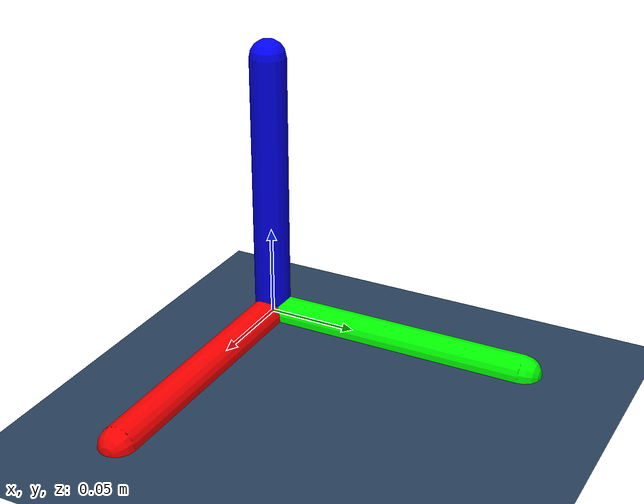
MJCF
<mujoco model="ur5e scene">
  <statistic center="0.3 0 0.4" extent="0.8"/>

  <visual>
    <headlight diffuse="0.6 0.6 0.6" ambient="0.1 0.1 0.1" specular="0 0 0"/>
    <rgba haze="0.15 0.25 0.35 1"/>
    <global azimuth="120" elevation="-20"/>
  </visual>

  <asset>
    <texture type="skybox" builtin="gradient" rgb1="0.3 0.5 0.7" rgb2="0 0 0" width="512" height="3072"/>
    <texture type="2d" name="groundplane" builtin="checker" mark="edge" rgb1="0.2 0.3 0.4" rgb2="0.1 0.2 0.3"
      markrgb="0.8 0.8 0.8" width="300" height="300"/>
    <material name="groundplane" texture="groundplane" texuniform="true" texrepeat="5 5" reflectance="0.2"/>
  </asset>

  <worldbody>
    <light pos="0 0 1.5" dir="0 0 -1" directional="true"/>
    <geom name="floor" size="0 0 0.05" type="plane" pos="0.0 0.0 0.0" material="groundplane"/>
    <!-- Definition of the world frame -->
    <body name="world_frame" pos="0.0 0.0 0.0">
        <geom name="world_x_axis" type="capsule" fromto="0 0 0 0.15 0 0" size="0.01" rgba="1 0 0 1" contype="0" conaffinity="0"/>
        <geom name="world_y_axis" type="capsule" fromto="0 0 0 0 0.15 0" size="0.01" rgba="0 1 0 1" contype="0" conaffinity="0"/>
        <geom name="world_z_axis" type="capsule" fromto="0 0 0 0 0 0.15" size="0.01" rgba="0 0 1 1" contype="0" conaffinity="0"/>
    </body>

    <!-- Optimization search space -->

  </worldbody>

</mujoco>
